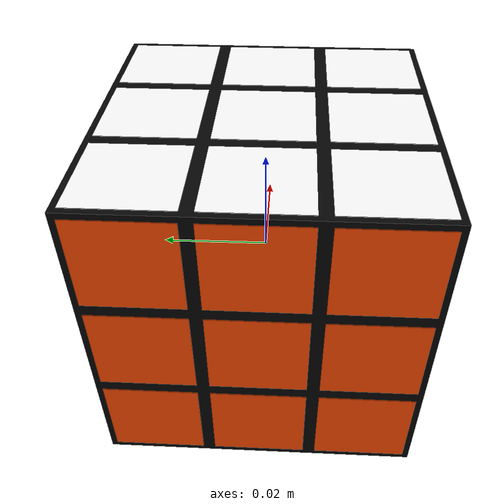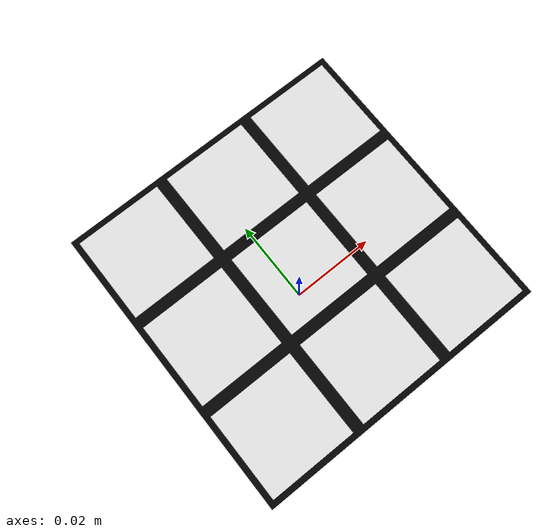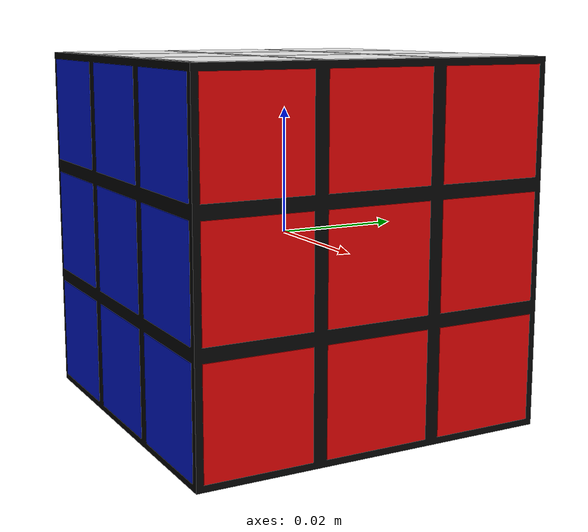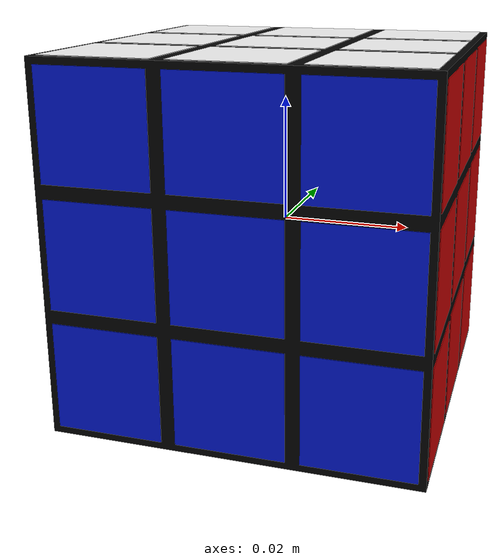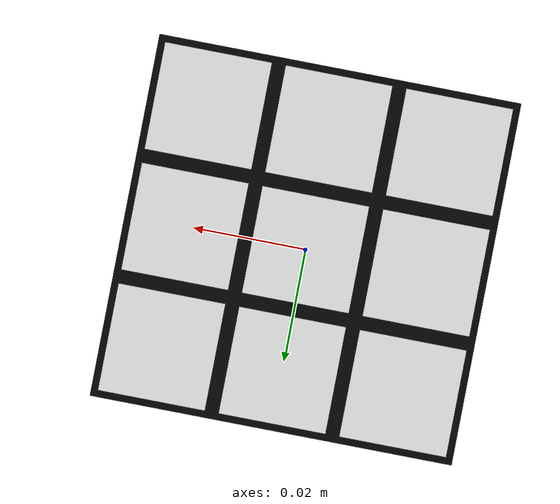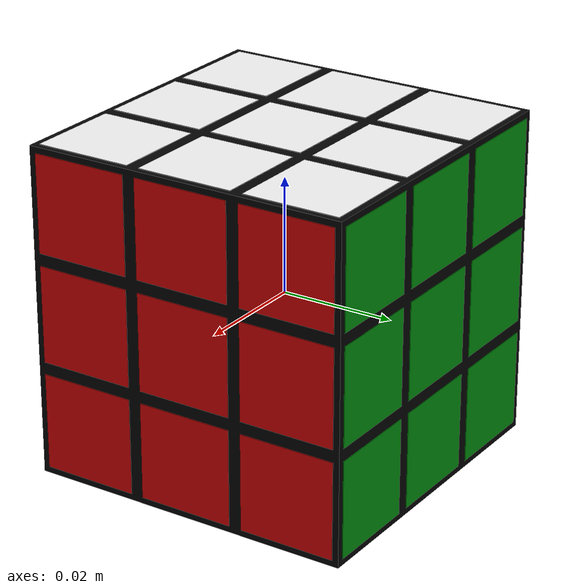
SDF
<?xml version='1.0' encoding='utf-8'?>
<sdf version="1.7">
  <model name="rubiks_cube">
    <static>false</static>
    <link name="cube">
      <inertial>
        <mass>0.10</mass>
        <inertia>
          <ixx>0.00005415</ixx>
          <iyy>0.00005415</iyy>
          <izz>0.00005415</izz>
          <ixy>0</ixy>
          <ixz>0</ixz>
          <iyz>0</iyz>
        </inertia>
      </inertial>
      <collision name="cube_collision">
        <geometry>
          <box>
            <size>0.057 0.057 0.057</size>
          </box>
        </geometry>
        <surface>
          <friction>
            <ode>
              <mu>0.8</mu>
              <mu2>0.8</mu2>
            </ode>
          </friction>
        </surface>
      </collision>
      <visual name="black_body">
        <pose>0 0 0 0 0 0</pose>
        <geometry>
          <box>
            <size>0.057 0.057 0.057</size>
          </box>
        </geometry>
        <material>
          <ambient>0.018 0.018 0.018 1</ambient>
          <diffuse>0.018 0.018 0.018 1</diffuse>
        </material>
      </visual>
      <visual name="red_0_0">
        <pose>0.02855 -0.019 -0.019 0 0 0</pose>
        <geometry>
          <box>
            <size>0.0001 0.0168 0.0168</size>
          </box>
        </geometry>
        <material>
          <ambient>0.85 0.015 0.015 1</ambient>
          <diffuse>0.85 0.015 0.015 1</diffuse>
        </material>
      </visual>
      <visual name="red_0_1">
        <pose>0.02855 -0.019 0.0 0 0 0</pose>
        <geometry>
          <box>
            <size>0.0001 0.0168 0.0168</size>
          </box>
        </geometry>
        <material>
          <ambient>0.85 0.015 0.015 1</ambient>
          <diffuse>0.85 0.015 0.015 1</diffuse>
        </material>
      </visual>
      <visual name="red_0_2">
        <pose>0.02855 -0.019 0.019 0 0 0</pose>
        <geometry>
          <box>
            <size>0.0001 0.0168 0.0168</size>
          </box>
        </geometry>
        <material>
          <ambient>0.85 0.015 0.015 1</ambient>
          <diffuse>0.85 0.015 0.015 1</diffuse>
        </material>
      </visual>
      <visual name="red_1_0">
        <pose>0.02855 0.0 -0.019 0 0 0</pose>
        <geometry>
          <box>
            <size>0.0001 0.0168 0.0168</size>
          </box>
        </geometry>
        <material>
          <ambient>0.85 0.015 0.015 1</ambient>
          <diffuse>0.85 0.015 0.015 1</diffuse>
        </material>
      </visual>
      <visual name="red_1_1">
        <pose>0.02855 0.0 0.0 0 0 0</pose>
        <geometry>
          <box>
            <size>0.0001 0.0168 0.0168</size>
          </box>
        </geometry>
        <material>
          <ambient>0.85 0.015 0.015 1</ambient>
          <diffuse>0.85 0.015 0.015 1</diffuse>
        </material>
      </visual>
      <visual name="red_1_2">
        <pose>0.02855 0.0 0.019 0 0 0</pose>
        <geometry>
          <box>
            <size>0.0001 0.0168 0.0168</size>
          </box>
        </geometry>
        <material>
          <ambient>0.85 0.015 0.015 1</ambient>
          <diffuse>0.85 0.015 0.015 1</diffuse>
        </material>
      </visual>
      <visual name="red_2_0">
        <pose>0.02855 0.019 -0.019 0 0 0</pose>
        <geometry>
          <box>
            <size>0.0001 0.0168 0.0168</size>
          </box>
        </geometry>
        <material>
          <ambient>0.85 0.015 0.015 1</ambient>
          <diffuse>0.85 0.015 0.015 1</diffuse>
        </material>
      </visual>
      <visual name="red_2_1">
        <pose>0.02855 0.019 0.0 0 0 0</pose>
        <geometry>
          <box>
            <size>0.0001 0.0168 0.0168</size>
          </box>
        </geometry>
        <material>
          <ambient>0.85 0.015 0.015 1</ambient>
          <diffuse>0.85 0.015 0.015 1</diffuse>
        </material>
      </visual>
      <visual name="red_2_2">
        <pose>0.02855 0.019 0.019 0 0 0</pose>
        <geometry>
          <box>
            <size>0.0001 0.0168 0.0168</size>
          </box>
        </geometry>
        <material>
          <ambient>0.85 0.015 0.015 1</ambient>
          <diffuse>0.85 0.015 0.015 1</diffuse>
        </material>
      </visual>
      <visual name="orange_0_0">
        <pose>-0.02855 -0.019 -0.019 0 0 0</pose>
        <geometry>
          <box>
            <size>0.0001 0.0168 0.0168</size>
          </box>
        </geometry>
        <material>
          <ambient>1 0.30 0.005 1</ambient>
          <diffuse>1 0.30 0.005 1</diffuse>
        </material>
      </visual>
      <visual name="orange_0_1">
        <pose>-0.02855 -0.019 0.0 0 0 0</pose>
        <geometry>
          <box>
            <size>0.0001 0.0168 0.0168</size>
          </box>
        </geometry>
        <material>
          <ambient>1 0.30 0.005 1</ambient>
          <diffuse>1 0.30 0.005 1</diffuse>
        </material>
      </visual>
      <visual name="orange_0_2">
        <pose>-0.02855 -0.019 0.019 0 0 0</pose>
        <geometry>
          <box>
            <size>0.0001 0.0168 0.0168</size>
          </box>
        </geometry>
        <material>
          <ambient>1 0.30 0.005 1</ambient>
          <diffuse>1 0.30 0.005 1</diffuse>
        </material>
      </visual>
      <visual name="orange_1_0">
        <pose>-0.02855 0.0 -0.019 0 0 0</pose>
        <geometry>
          <box>
            <size>0.0001 0.0168 0.0168</size>
          </box>
        </geometry>
        <material>
          <ambient>1 0.30 0.005 1</ambient>
          <diffuse>1 0.30 0.005 1</diffuse>
        </material>
      </visual>
      <visual name="orange_1_1">
        <pose>-0.02855 0.0 0.0 0 0 0</pose>
        <geometry>
          <box>
            <size>0.0001 0.0168 0.0168</size>
          </box>
        </geometry>
        <material>
          <ambient>1 0.30 0.005 1</ambient>
          <diffuse>1 0.30 0.005 1</diffuse>
        </material>
      </visual>
      <visual name="orange_1_2">
        <pose>-0.02855 0.0 0.019 0 0 0</pose>
        <geometry>
          <box>
            <size>0.0001 0.0168 0.0168</size>
          </box>
        </geometry>
        <material>
          <ambient>1 0.30 0.005 1</ambient>
          <diffuse>1 0.30 0.005 1</diffuse>
        </material>
      </visual>
      <visual name="orange_2_0">
        <pose>-0.02855 0.019 -0.019 0 0 0</pose>
        <geometry>
          <box>
            <size>0.0001 0.0168 0.0168</size>
          </box>
        </geometry>
        <material>
          <ambient>1 0.30 0.005 1</ambient>
          <diffuse>1 0.30 0.005 1</diffuse>
        </material>
      </visual>
      <visual name="orange_2_1">
        <pose>-0.02855 0.019 0.0 0 0 0</pose>
        <geometry>
          <box>
            <size>0.0001 0.0168 0.0168</size>
          </box>
        </geometry>
        <material>
          <ambient>1 0.30 0.005 1</ambient>
          <diffuse>1 0.30 0.005 1</diffuse>
        </material>
      </visual>
      <visual name="orange_2_2">
        <pose>-0.02855 0.019 0.019 0 0 0</pose>
        <geometry>
          <box>
            <size>0.0001 0.0168 0.0168</size>
          </box>
        </geometry>
        <material>
          <ambient>1 0.30 0.005 1</ambient>
          <diffuse>1 0.30 0.005 1</diffuse>
        </material>
      </visual>
      <visual name="green_0_0">
        <pose>-0.019 0.02855 -0.019 0 0 0</pose>
        <geometry>
          <box>
            <size>0.0168 0.0001 0.0168</size>
          </box>
        </geometry>
        <material>
          <ambient>0.01 0.60 0.06 1</ambient>
          <diffuse>0.01 0.60 0.06 1</diffuse>
        </material>
      </visual>
      <visual name="green_0_1">
        <pose>-0.019 0.02855 0.0 0 0 0</pose>
        <geometry>
          <box>
            <size>0.0168 0.0001 0.0168</size>
          </box>
        </geometry>
        <material>
          <ambient>0.01 0.60 0.06 1</ambient>
          <diffuse>0.01 0.60 0.06 1</diffuse>
        </material>
      </visual>
      <visual name="green_0_2">
        <pose>-0.019 0.02855 0.019 0 0 0</pose>
        <geometry>
          <box>
            <size>0.0168 0.0001 0.0168</size>
          </box>
        </geometry>
        <material>
          <ambient>0.01 0.60 0.06 1</ambient>
          <diffuse>0.01 0.60 0.06 1</diffuse>
        </material>
      </visual>
      <visual name="green_1_0">
        <pose>0.0 0.02855 -0.019 0 0 0</pose>
        <geometry>
          <box>
            <size>0.0168 0.0001 0.0168</size>
          </box>
        </geometry>
        <material>
          <ambient>0.01 0.60 0.06 1</ambient>
          <diffuse>0.01 0.60 0.06 1</diffuse>
        </material>
      </visual>
      <visual name="green_1_1">
        <pose>0.0 0.02855 0.0 0 0 0</pose>
        <geometry>
          <box>
            <size>0.0168 0.0001 0.0168</size>
          </box>
        </geometry>
        <material>
          <ambient>0.01 0.60 0.06 1</ambient>
          <diffuse>0.01 0.60 0.06 1</diffuse>
        </material>
      </visual>
      <visual name="green_1_2">
        <pose>0.0 0.02855 0.019 0 0 0</pose>
        <geometry>
          <box>
            <size>0.0168 0.0001 0.0168</size>
          </box>
        </geometry>
        <material>
          <ambient>0.01 0.60 0.06 1</ambient>
          <diffuse>0.01 0.60 0.06 1</diffuse>
        </material>
      </visual>
      <visual name="green_2_0">
        <pose>0.019 0.02855 -0.019 0 0 0</pose>
        <geometry>
          <box>
            <size>0.0168 0.0001 0.0168</size>
          </box>
        </geometry>
        <material>
          <ambient>0.01 0.60 0.06 1</ambient>
          <diffuse>0.01 0.60 0.06 1</diffuse>
        </material>
      </visual>
      <visual name="green_2_1">
        <pose>0.019 0.02855 0.0 0 0 0</pose>
        <geometry>
          <box>
            <size>0.0168 0.0001 0.0168</size>
          </box>
        </geometry>
        <material>
          <ambient>0.01 0.60 0.06 1</ambient>
          <diffuse>0.01 0.60 0.06 1</diffuse>
        </material>
      </visual>
      <visual name="green_2_2">
        <pose>0.019 0.02855 0.019 0 0 0</pose>
        <geometry>
          <box>
            <size>0.0168 0.0001 0.0168</size>
          </box>
        </geometry>
        <material>
          <ambient>0.01 0.60 0.06 1</ambient>
          <diffuse>0.01 0.60 0.06 1</diffuse>
        </material>
      </visual>
      <visual name="blue_0_0">
        <pose>-0.019 -0.02855 -0.019 0 0 0</pose>
        <geometry>
          <box>
            <size>0.0168 0.0001 0.0168</size>
          </box>
        </geometry>
        <material>
          <ambient>0.015 0.10 0.85 1</ambient>
          <diffuse>0.015 0.10 0.85 1</diffuse>
        </material>
      </visual>
      <visual name="blue_0_1">
        <pose>-0.019 -0.02855 0.0 0 0 0</pose>
        <geometry>
          <box>
            <size>0.0168 0.0001 0.0168</size>
          </box>
        </geometry>
        <material>
          <ambient>0.015 0.10 0.85 1</ambient>
          <diffuse>0.015 0.10 0.85 1</diffuse>
        </material>
      </visual>
      <visual name="blue_0_2">
        <pose>-0.019 -0.02855 0.019 0 0 0</pose>
        <geometry>
          <box>
            <size>0.0168 0.0001 0.0168</size>
          </box>
        </geometry>
        <material>
          <ambient>0.015 0.10 0.85 1</ambient>
          <diffuse>0.015 0.10 0.85 1</diffuse>
        </material>
      </visual>
      <visual name="blue_1_0">
        <pose>0.0 -0.02855 -0.019 0 0 0</pose>
        <geometry>
          <box>
            <size>0.0168 0.0001 0.0168</size>
          </box>
        </geometry>
        <material>
          <ambient>0.015 0.10 0.85 1</ambient>
          <diffuse>0.015 0.10 0.85 1</diffuse>
        </material>
      </visual>
      <visual name="blue_1_1">
        <pose>0.0 -0.02855 0.0 0 0 0</pose>
        <geometry>
          <box>
            <size>0.0168 0.0001 0.0168</size>
          </box>
        </geometry>
        <material>
          <ambient>0.015 0.10 0.85 1</ambient>
          <diffuse>0.015 0.10 0.85 1</diffuse>
        </material>
      </visual>
      <visual name="blue_1_2">
        <pose>0.0 -0.02855 0.019 0 0 0</pose>
        <geometry>
          <box>
            <size>0.0168 0.0001 0.0168</size>
          </box>
        </geometry>
        <material>
          <ambient>0.015 0.10 0.85 1</ambient>
          <diffuse>0.015 0.10 0.85 1</diffuse>
        </material>
      </visual>
      <visual name="blue_2_0">
        <pose>0.019 -0.02855 -0.019 0 0 0</pose>
        <geometry>
          <box>
            <size>0.0168 0.0001 0.0168</size>
          </box>
        </geometry>
        <material>
          <ambient>0.015 0.10 0.85 1</ambient>
          <diffuse>0.015 0.10 0.85 1</diffuse>
        </material>
      </visual>
      <visual name="blue_2_1">
        <pose>0.019 -0.02855 0.0 0 0 0</pose>
        <geometry>
          <box>
            <size>0.0168 0.0001 0.0168</size>
          </box>
        </geometry>
        <material>
          <ambient>0.015 0.10 0.85 1</ambient>
          <diffuse>0.015 0.10 0.85 1</diffuse>
        </material>
      </visual>
      <visual name="blue_2_2">
        <pose>0.019 -0.02855 0.019 0 0 0</pose>
        <geometry>
          <box>
            <size>0.0168 0.0001 0.0168</size>
          </box>
        </geometry>
        <material>
          <ambient>0.015 0.10 0.85 1</ambient>
          <diffuse>0.015 0.10 0.85 1</diffuse>
        </material>
      </visual>
      <visual name="white_0_0">
        <pose>-0.019 -0.019 0.02855 0 0 0</pose>
        <geometry>
          <box>
            <size>0.0168 0.0168 0.0001</size>
          </box>
        </geometry>
        <material>
          <ambient>0.95 0.95 0.95 1</ambient>
          <diffuse>0.95 0.95 0.95 1</diffuse>
        </material>
      </visual>
      <visual name="white_0_1">
        <pose>-0.019 0.0 0.02855 0 0 0</pose>
        <geometry>
          <box>
            <size>0.0168 0.0168 0.0001</size>
          </box>
        </geometry>
        <material>
          <ambient>0.95 0.95 0.95 1</ambient>
          <diffuse>0.95 0.95 0.95 1</diffuse>
        </material>
      </visual>
      <visual name="white_0_2">
        <pose>-0.019 0.019 0.02855 0 0 0</pose>
        <geometry>
          <box>
            <size>0.0168 0.0168 0.0001</size>
          </box>
        </geometry>
        <material>
          <ambient>0.95 0.95 0.95 1</ambient>
          <diffuse>0.95 0.95 0.95 1</diffuse>
        </material>
      </visual>
      <visual name="white_1_0">
        <pose>0.0 -0.019 0.02855 0 0 0</pose>
        <geometry>
          <box>
            <size>0.0168 0.0168 0.0001</size>
          </box>
        </geometry>
        <material>
          <ambient>0.95 0.95 0.95 1</ambient>
          <diffuse>0.95 0.95 0.95 1</diffuse>
        </material>
      </visual>
      <visual name="white_1_1">
        <pose>0.0 0.0 0.02855 0 0 0</pose>
        <geometry>
          <box>
            <size>0.0168 0.0168 0.0001</size>
          </box>
        </geometry>
        <material>
          <ambient>0.95 0.95 0.95 1</ambient>
          <diffuse>0.95 0.95 0.95 1</diffuse>
        </material>
      </visual>
      <visual name="white_1_2">
        <pose>0.0 0.019 0.02855 0 0 0</pose>
        <geometry>
          <box>
            <size>0.0168 0.0168 0.0001</size>
          </box>
        </geometry>
        <material>
          <ambient>0.95 0.95 0.95 1</ambient>
          <diffuse>0.95 0.95 0.95 1</diffuse>
        </material>
      </visual>
      <visual name="white_2_0">
        <pose>0.019 -0.019 0.02855 0 0 0</pose>
        <geometry>
          <box>
            <size>0.0168 0.0168 0.0001</size>
          </box>
        </geometry>
        <material>
          <ambient>0.95 0.95 0.95 1</ambient>
          <diffuse>0.95 0.95 0.95 1</diffuse>
        </material>
      </visual>
      <visual name="white_2_1">
        <pose>0.019 0.0 0.02855 0 0 0</pose>
        <geometry>
          <box>
            <size>0.0168 0.0168 0.0001</size>
          </box>
        </geometry>
        <material>
          <ambient>0.95 0.95 0.95 1</ambient>
          <diffuse>0.95 0.95 0.95 1</diffuse>
        </material>
      </visual>
      <visual name="white_2_2">
        <pose>0.019 0.019 0.02855 0 0 0</pose>
        <geometry>
          <box>
            <size>0.0168 0.0168 0.0001</size>
          </box>
        </geometry>
        <material>
          <ambient>0.95 0.95 0.95 1</ambient>
          <diffuse>0.95 0.95 0.95 1</diffuse>
        </material>
      </visual>
      <visual name="yellow_0_0">
        <pose>-0.019 -0.019 -0.02855 0 0 0</pose>
        <geometry>
          <box>
            <size>0.0168 0.0168 0.0001</size>
          </box>
        </geometry>
        <material>
          <ambient>1 0.85 0.005 1</ambient>
          <diffuse>1 0.85 0.005 1</diffuse>
        </material>
      </visual>
      <visual name="yellow_0_1">
        <pose>-0.019 0.0 -0.02855 0 0 0</pose>
        <geometry>
          <box>
            <size>0.0168 0.0168 0.0001</size>
          </box>
        </geometry>
        <material>
          <ambient>1 0.85 0.005 1</ambient>
          <diffuse>1 0.85 0.005 1</diffuse>
        </material>
      </visual>
      <visual name="yellow_0_2">
        <pose>-0.019 0.019 -0.02855 0 0 0</pose>
        <geometry>
          <box>
            <size>0.0168 0.0168 0.0001</size>
          </box>
        </geometry>
        <material>
          <ambient>1 0.85 0.005 1</ambient>
          <diffuse>1 0.85 0.005 1</diffuse>
        </material>
      </visual>
      <visual name="yellow_1_0">
        <pose>0.0 -0.019 -0.02855 0 0 0</pose>
        <geometry>
          <box>
            <size>0.0168 0.0168 0.0001</size>
          </box>
        </geometry>
        <material>
          <ambient>1 0.85 0.005 1</ambient>
          <diffuse>1 0.85 0.005 1</diffuse>
        </material>
      </visual>
      <visual name="yellow_1_1">
        <pose>0.0 0.0 -0.02855 0 0 0</pose>
        <geometry>
          <box>
            <size>0.0168 0.0168 0.0001</size>
          </box>
        </geometry>
        <material>
          <ambient>1 0.85 0.005 1</ambient>
          <diffuse>1 0.85 0.005 1</diffuse>
        </material>
      </visual>
      <visual name="yellow_1_2">
        <pose>0.0 0.019 -0.02855 0 0 0</pose>
        <geometry>
          <box>
            <size>0.0168 0.0168 0.0001</size>
          </box>
        </geometry>
        <material>
          <ambient>1 0.85 0.005 1</ambient>
          <diffuse>1 0.85 0.005 1</diffuse>
        </material>
      </visual>
      <visual name="yellow_2_0">
        <pose>0.019 -0.019 -0.02855 0 0 0</pose>
        <geometry>
          <box>
            <size>0.0168 0.0168 0.0001</size>
          </box>
        </geometry>
        <material>
          <ambient>1 0.85 0.005 1</ambient>
          <diffuse>1 0.85 0.005 1</diffuse>
        </material>
      </visual>
      <visual name="yellow_2_1">
        <pose>0.019 0.0 -0.02855 0 0 0</pose>
        <geometry>
          <box>
            <size>0.0168 0.0168 0.0001</size>
          </box>
        </geometry>
        <material>
          <ambient>1 0.85 0.005 1</ambient>
          <diffuse>1 0.85 0.005 1</diffuse>
        </material>
      </visual>
      <visual name="yellow_2_2">
        <pose>0.019 0.019 -0.02855 0 0 0</pose>
        <geometry>
          <box>
            <size>0.0168 0.0168 0.0001</size>
          </box>
        </geometry>
        <material>
          <ambient>1 0.85 0.005 1</ambient>
          <diffuse>1 0.85 0.005 1</diffuse>
        </material>
      </visual>
    </link>
  </model>
</sdf>
